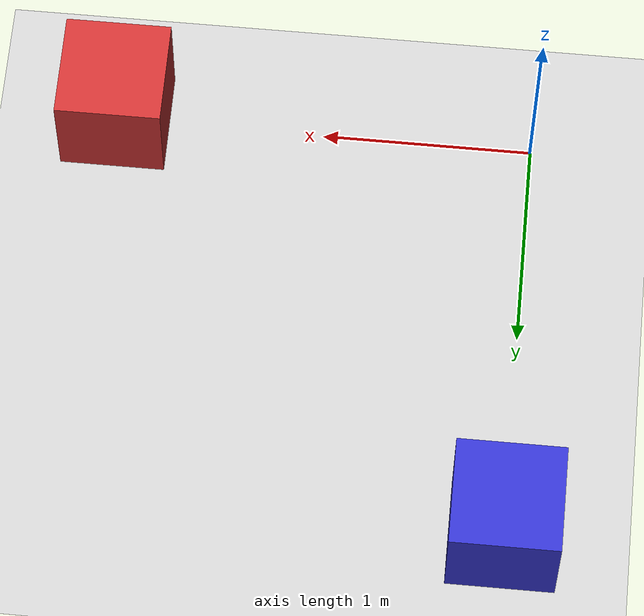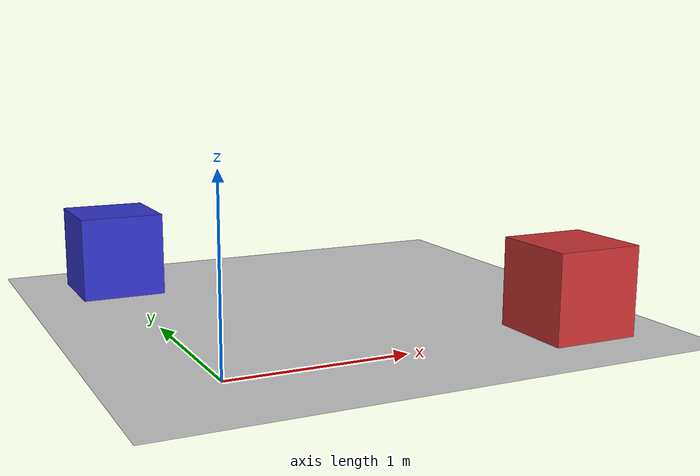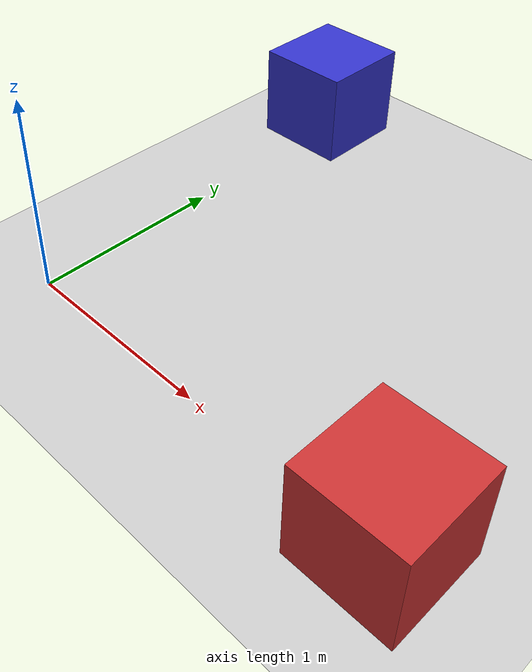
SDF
<?xml version="1.0" ?>
<sdf version="1.9">
  <world name="jetrover_world">

    <physics name="1ms" type="ignored">
      <max_step_size>0.001</max_step_size>
      <real_time_factor>1.0</real_time_factor>
    </physics>

    <plugin filename="ignition-gazebo-physics-system" name="ignition::gazebo::systems::Physics"/>
    <plugin filename="ignition-gazebo-user-commands-system" name="ignition::gazebo::systems::UserCommands"/>
    <plugin filename="ignition-gazebo-scene-broadcaster-system" name="ignition::gazebo::systems::SceneBroadcaster"/>
    <plugin filename="ignition-gazebo-sensors-system" name="ignition::gazebo::systems::Sensors">
      <render_engine>ogre2</render_engine>
    </plugin>
    <plugin filename="ignition-gazebo-imu-system" name="ignition::gazebo::systems::Imu"/>

    <light type="directional" name="sun">
      <cast_shadows>true</cast_shadows>
      <pose>0 0 10 0 0 0</pose>
      <diffuse>1 1 1 1</diffuse>
      <specular>0.5 0.5 0.5 1</specular>
      <attenuation>
        <range>1000</range>
        <constant>0.9</constant>
        <linear>0.01</linear>
        <quadratic>0.001</quadratic>
      </attenuation>
      <direction>-0.5 0.1 -0.9</direction>
    </light>

    <model name="ground_plane">
      <static>true</static>
      <link name="link">
        <collision name="collision">
          <geometry>
            <plane>
              <normal>0 0 1</normal>
              <size>50 50</size>
            </plane>
          </geometry>
          <surface>
            <friction>
              <ode>
                <mu>1.0</mu>
                <mu2>1.0</mu2>
              </ode>
            </friction>
          </surface>
        </collision>
        <visual name="visual">
          <geometry>
            <plane>
              <normal>0 0 1</normal>
              <size>50 50</size>
            </plane>
          </geometry>
          <material>
            <ambient>0.8 0.8 0.8 1</ambient>
            <diffuse>0.8 0.8 0.8 1</diffuse>
            <specular>0.8 0.8 0.8 1</specular>
          </material>
        </visual>
      </link>
    </model>

    <!-- A few boxes so the LiDAR/depth camera have something to see -->
    <model name="box_1">
      <static>true</static>
      <pose>2 0 0.25 0 0 0</pose>
      <link name="link">
        <collision name="collision">
          <geometry><box><size>0.5 0.5 0.5</size></box></geometry>
        </collision>
        <visual name="visual">
          <geometry><box><size>0.5 0.5 0.5</size></box></geometry>
          <material>
            <ambient>0.8 0.2 0.2 1</ambient>
            <diffuse>0.8 0.2 0.2 1</diffuse>
          </material>
        </visual>
      </link>
    </model>

    <model name="box_2">
      <static>true</static>
      <pose>0 2 0.25 0 0 0</pose>
      <link name="link">
        <collision name="collision">
          <geometry><box><size>0.5 0.5 0.5</size></box></geometry>
        </collision>
        <visual name="visual">
          <geometry><box><size>0.5 0.5 0.5</size></box></geometry>
          <material>
            <ambient>0.2 0.2 0.8 1</ambient>
            <diffuse>0.2 0.2 0.8 1</diffuse>
          </material>
        </visual>
      </link>
    </model>

  </world>
</sdf>
